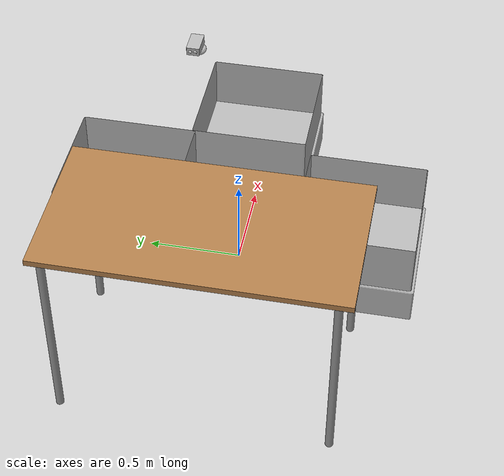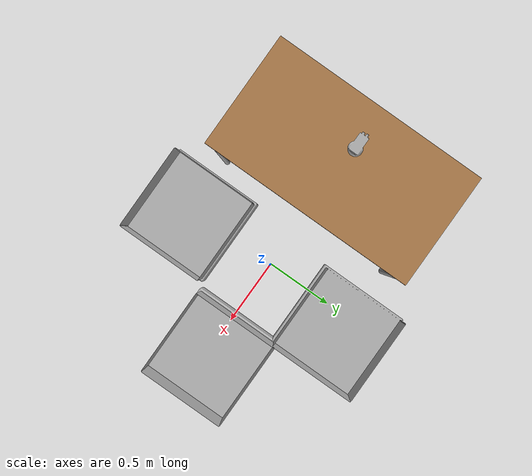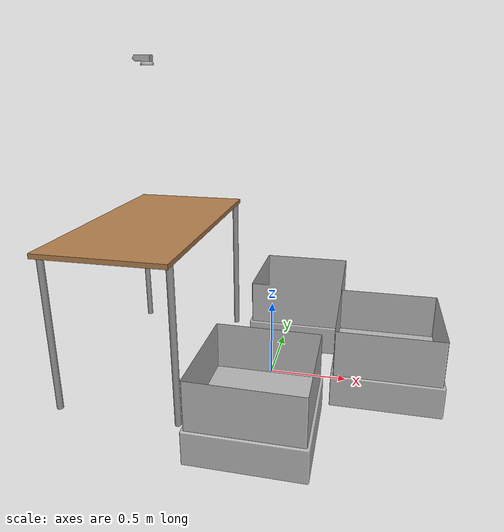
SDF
<?xml version='1.0' encoding='utf-8'?>
<sdf version="1.6">
  <world name="default">
    <!-- A gazebo links attacher -->
    <plugin name="ros_link_attacher_plugin" filename="libgazebo_ros_link_attacher.so"/>

    <gravity>0 0 -9.8</gravity>
    <physics default="0" name="default_physics" type="ode">
      <max_step_size>0.001</max_step_size>
      <real_time_factor>1</real_time_factor>
      <real_time_update_rate>1000</real_time_update_rate>
    </physics>

    <include>
      <uri>model://logical_camera2</uri>
      <pose>-0.8 0 2.0 0 1.5708 0</pose>
    </include>

    <model name="table">
      <include>
        <uri>model://table</uri>
        <pose>-0.8 0 0 0 0 1.5708</pose>
        <static>true</static>
      </include>
    </model>

    <model name="sorting_bin_red_">
      <include>
        <uri>model://sorting_bin_red_</uri>
        <pose>0.11 0.65 0.0 0 0 0</pose>
        <static>true</static>
      </include>
    </model>

    <model name="sorting_bin_blue_">
      <include>
        <uri>model://sorting_bin_blue_</uri>
        <pose>0.04 -0.65 0 0 0 0</pose>
        <static>true</static>
      </include>
    </model>

    <model name="sorting_bin_green_">
      <include>
        <uri>model://sorting_bin_green_</uri>
        <pose>0.75 0.03 0 0 0 -1.57</pose>
        <static>true</static>
      </include>
    </model>

    <light name="Warehouse_CeilingLight_003" type="point">
      <pose frame="">0 0 5 0 0 0</pose>
      <diffuse>0.5 0.5 0.5 1</diffuse>
      <specular>0.2 0.2 0.2 1</specular>
      <attenuation>
        <range>80</range>
        <constant>0.1</constant>
        <linear>0.01</linear>
        <quadratic>0.001</quadratic>
      </attenuation>
      <cast_shadows>1</cast_shadows>
      <direction>0 0 -1</direction>
    </light>

    <gui fullscreen='0'>
      <camera name='user_camera'>
        <pose frame=''>-2.75 4.19 5.15 0.0 0.72 -0.99</pose>
        <view_controller>orbit</view_controller>
        <projection_type>perspective</projection_type>
      </camera>
    </gui>

  </world>
</sdf>

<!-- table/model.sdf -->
<sdf version="1.5">
  <model name="table">
    <static>true</static>
    <link name="link">
      <collision name="surface">
        <pose>0 0 1.0 0 0 0</pose>
        <geometry>
          <box>
            <size>1.5 0.8 0.03</size>
          </box>
        </geometry>
        <surface>
          <friction>
            <ode>
              <mu>0.6</mu>
              <mu2>0.6</mu2>
            </ode>
          </friction>
        </surface>
      </collision>
      <visual name="visual1">
        <pose>0 0 1.0 0 0 0</pose>
        <geometry>
          <box>
            <size>1.5 0.8 0.03</size>
          </box>
        </geometry>
        <material>
          <script>
            <uri>model://media/materials/scripts/gazebo.material</uri>
            <name>Gazebo/Wood</name>
          </script>
        </material>
      </visual>
      <collision name="front_left_leg">
        <pose>0.68 0.38 0.5 0 0 0</pose>
        <geometry>
          <cylinder>
            <radius>0.02</radius>
            <length>1.0</length>
          </cylinder>
        </geometry>
      </collision>
      <visual name="front_left_leg">
        <pose>0.68 0.38 0.5 0 0 0</pose>
        <geometry>
          <cylinder>
            <radius>0.02</radius>
            <length>1.0</length>
          </cylinder>
        </geometry>
        <material>
          <script>
            <uri>model://media/materials/scripts/gazebo.material</uri>
            <name>Gazebo/Grey</name>
          </script>
        </material>
      </visual>
      <collision name="front_right_leg">
        <pose>0.68 -0.38 0.5 0 0 0</pose>
        <geometry>
          <cylinder>
            <radius>0.02</radius>
            <length>1.0</length>
          </cylinder>
        </geometry>
      </collision>
      <visual name="front_right_leg">
        <pose>0.68 -0.38 0.5 0 0 0</pose>
        <geometry>
          <cylinder>
            <radius>0.02</radius>
            <length>1.0</length>
          </cylinder>
        </geometry>
        <material>
          <script>
            <uri>model://media/materials/scripts/gazebo.material</uri>
            <name>Gazebo/Grey</name>
          </script>
        </material>
      </visual>
      <collision name="back_right_leg">
        <pose>-0.68 -0.38 0.5 0 0 0</pose>
        <geometry>
          <cylinder>
            <radius>0.02</radius>
            <length>1.0</length>
          </cylinder>
        </geometry>
      </collision>
      <visual name="back_right_leg">
        <pose>-0.68 -0.38 0.5 0 0 0</pose>
        <geometry>
          <cylinder>
            <radius>0.02</radius>
            <length>1.0</length>
          </cylinder>
        </geometry>
        <material>
          <script>
            <uri>model://media/materials/scripts/gazebo.material</uri>
            <name>Gazebo/Grey</name>
          </script>
        </material>
      </visual>
      <collision name="back_left_leg">
        <pose>-0.68 0.38 0.5 0 0 0</pose>
        <geometry>
          <cylinder>
            <radius>0.02</radius>
            <length>1.0</length>
          </cylinder>
        </geometry>
      </collision>
      <visual name="back_left_leg">
        <pose>-0.68 0.38 0.5 0 0 0</pose>
        <geometry>
          <cylinder>
            <radius>0.02</radius>
            <length>1.0</length>
          </cylinder>
        </geometry>
        <material>
          <script>
            <uri>model://media/materials/scripts/gazebo.material</uri>
            <name>Gazebo/Grey</name>
          </script>
        </material>
      </visual>
    </link>
  </model>
</sdf>

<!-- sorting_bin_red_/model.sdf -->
<sdf version='1.6'>
  <model name='sorting_bin_red_'>
    <link name='sorting_bin_red_base_link'>
      <pose frame=''>0 0 0 0 -0 0</pose>
      <inertial>
        <pose frame=''>0 0 0.009901 0 -0 0</pose>
        <mass>101</mass>
        <inertia>
          <ixx>2.9901</ixx>
          <ixy>0</ixy>
          <ixz>0</ixz>
          <iyy>2.9901</iyy>
          <iyz>0</iyz>
          <izz>2</izz>
        </inertia>
      </inertial>
      <gravity>1</gravity>
      <velocity_decay/>
      <sensor name='sorting_bin_red_contact_sensor' type='contact'>
        <update_rate>10</update_rate>
        <contact>
          <collision>sorting_bin_red_base_link_collision</collision>
          <topic>__default_topic__</topic>
        </contact>
        <pose frame=''>0 0 1 0 -0 0</pose>
      </sensor>
      <self_collide>0</self_collide>
      <enable_wind>0</enable_wind>
      <kinematic>0</kinematic>
      <visual name='sorting_bin_red_base_link_visual'>
        <pose frame=''>0 0 0 0 -0 0</pose>
        <geometry>
          <mesh>
            <scale>1 1 1</scale>
            <uri>model://sorting_bin_red_/meshes/visual/bin.dae</uri>
          </mesh>
        </geometry>
        <material>
          <shader type='pixel'/>
        </material>
        <transparency>0</transparency>
        <cast_shadows>1</cast_shadows>
      </visual>
      <collision name='sorting_bin_red_base_link_collision'>
        <laser_retro>0</laser_retro>
        <max_contacts>10</max_contacts>
        <pose frame=''>0 0 0 0 -0 0</pose>
        <geometry>
          <mesh>
            <uri>model://sorting_bin_red_/meshes/collision/bin_bottom.dae</uri>
            <scale>1 1 1</scale>
          </mesh>
        </geometry>
        <surface>
          <friction>
            <ode>
              <mu>1</mu>
              <mu2>1</mu2>
              <fdir1>0 0 0</fdir1>
              <slip1>0</slip1>
              <slip2>0</slip2>
            </ode>
            <torsional>
              <coefficient>1</coefficient>
              <patch_radius>0</patch_radius>
              <surface_radius>0</surface_radius>
              <use_patch_radius>1</use_patch_radius>
              <ode>
                <slip>0</slip>
              </ode>
            </torsional>
          </friction>
          <bounce>
            <restitution_coefficient>0</restitution_coefficient>
            <threshold>1e+06</threshold>
          </bounce>
          <contact>
            <collide_without_contact>0</collide_without_contact>
            <collide_without_contact_bitmask>1</collide_without_contact_bitmask>
            <collide_bitmask>1</collide_bitmask>
            <ode>
              <soft_cfm>0</soft_cfm>
              <soft_erp>0.2</soft_erp>
              <kp>1e+13</kp>
              <kd>1</kd>
              <max_vel>0.01</max_vel>
              <min_depth>0</min_depth>
            </ode>
            <bullet>
              <split_impulse>1</split_impulse>
              <split_impulse_penetration_threshold>-0.01</split_impulse_penetration_threshold>
              <soft_cfm>0</soft_cfm>
              <soft_erp>0.2</soft_erp>
              <kp>1e+13</kp>
              <kd>1</kd>
            </bullet>
          </contact>
        </surface>
      </collision>
      <collision name='sorting_bin_red_base_link_collision_1'>
        <laser_retro>0</laser_retro>
        <max_contacts>10</max_contacts>
        <pose frame=''>0 0 0 0 -0 0</pose>
        <geometry>
          <mesh>
            <uri>model://sorting_bin_red_/meshes/collision/bin_sides.dae</uri>
            <scale>1 1 1</scale>
          </mesh>
        </geometry>
        <surface>
          <friction>
            <ode>
              <mu>1</mu>
              <mu2>1</mu2>
              <fdir1>0 0 0</fdir1>
              <slip1>0</slip1>
              <slip2>0</slip2>
            </ode>
            <torsional>
              <coefficient>1</coefficient>
              <patch_radius>0</patch_radius>
              <surface_radius>0</surface_radius>
              <use_patch_radius>1</use_patch_radius>
              <ode>
                <slip>0</slip>
              </ode>
            </torsional>
          </friction>
          <bounce>
            <restitution_coefficient>0</restitution_coefficient>
            <threshold>1e+06</threshold>
          </bounce>
          <contact>
            <collide_without_contact>0</collide_without_contact>
            <collide_without_contact_bitmask>1</collide_without_contact_bitmask>
            <collide_bitmask>1</collide_bitmask>
            <ode>
              <soft_cfm>0</soft_cfm>
              <soft_erp>0.2</soft_erp>
              <kp>1e+13</kp>
              <kd>1</kd>
              <max_vel>0.01</max_vel>
              <min_depth>0</min_depth>
            </ode>
            <bullet>
              <split_impulse>1</split_impulse>
              <split_impulse_penetration_threshold>-0.01</split_impulse_penetration_threshold>
              <soft_cfm>0</soft_cfm>
              <soft_erp>0.2</soft_erp>
              <kp>1e+13</kp>
              <kd>1</kd>
            </bullet>
          </contact>
        </surface>
      </collision>
    </link>
    <static>1</static>
    <allow_auto_disable>1</allow_auto_disable>
  </model>
</sdf>

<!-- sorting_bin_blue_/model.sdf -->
<sdf version='1.6'>
  <model name='sorting_bin_blue_'>
    <link name='sorting_bin_blue_base_link'>
      <pose frame=''>0 0 0 0 -0 0</pose>
      <inertial>
        <pose frame=''>0 0 0.009901 0 -0 0</pose>
        <mass>101</mass>
        <inertia>
          <ixx>2.9901</ixx>
          <ixy>0</ixy>
          <ixz>0</ixz>
          <iyy>2.9901</iyy>
          <iyz>0</iyz>
          <izz>2</izz>
        </inertia>
      </inertial>
      <gravity>1</gravity>
      <velocity_decay/>
      <sensor name='sorting_bin_blue_contact_sensor' type='contact'>
        <update_rate>10</update_rate>
        <contact>
          <collision>sorting_bin_blue_base_link_collision</collision>
          <topic>__default_topic__</topic>
        </contact>
        <pose frame=''>0 0 1 0 -0 0</pose>
      </sensor>
      <self_collide>0</self_collide>
      <enable_wind>0</enable_wind>
      <kinematic>0</kinematic>
      <visual name='sorting_bin_blue_base_link_visual'>
        <pose frame=''>0 0 0 0 -0 0</pose>
        <geometry>
          <mesh>
            <scale>1 1 1</scale>
            <uri>model://sorting_bin_blue_/meshes/visual/bin.dae</uri>
          </mesh>
        </geometry>
        <material>
          <shader type='pixel'/>
        </material>
        <transparency>0</transparency>
        <cast_shadows>1</cast_shadows>
      </visual>
      <collision name='sorting_bin_blue_base_link_collision'>
        <laser_retro>0</laser_retro>
        <max_contacts>10</max_contacts>
        <pose frame=''>0 0 0 0 -0 0</pose>
        <geometry>
          <mesh>
            <uri>model://sorting_bin_blue_/meshes/collision/bin_bottom.dae</uri>
            <scale>1 1 1</scale>
          </mesh>
        </geometry>
        <surface>
          <friction>
            <ode>
              <mu>1</mu>
              <mu2>1</mu2>
              <fdir1>0 0 0</fdir1>
              <slip1>0</slip1>
              <slip2>0</slip2>
            </ode>
            <torsional>
              <coefficient>1</coefficient>
              <patch_radius>0</patch_radius>
              <surface_radius>0</surface_radius>
              <use_patch_radius>1</use_patch_radius>
              <ode>
                <slip>0</slip>
              </ode>
            </torsional>
          </friction>
          <bounce>
            <restitution_coefficient>0</restitution_coefficient>
            <threshold>1e+06</threshold>
          </bounce>
          <contact>
            <collide_without_contact>0</collide_without_contact>
            <collide_without_contact_bitmask>1</collide_without_contact_bitmask>
            <collide_bitmask>1</collide_bitmask>
            <ode>
              <soft_cfm>0</soft_cfm>
              <soft_erp>0.2</soft_erp>
              <kp>1e+13</kp>
              <kd>1</kd>
              <max_vel>0.01</max_vel>
              <min_depth>0</min_depth>
            </ode>
            <bullet>
              <split_impulse>1</split_impulse>
              <split_impulse_penetration_threshold>-0.01</split_impulse_penetration_threshold>
              <soft_cfm>0</soft_cfm>
              <soft_erp>0.2</soft_erp>
              <kp>1e+13</kp>
              <kd>1</kd>
            </bullet>
          </contact>
        </surface>
      </collision>
      <collision name='sorting_bin_blue_base_link_collision_1'>
        <laser_retro>0</laser_retro>
        <max_contacts>10</max_contacts>
        <pose frame=''>0 0 0 0 -0 0</pose>
        <geometry>
          <mesh>
            <uri>model://sorting_bin_blue_/meshes/collision/bin_sides.dae</uri>
            <scale>1 1 1</scale>
          </mesh>
        </geometry>
        <surface>
          <friction>
            <ode>
              <mu>1</mu>
              <mu2>1</mu2>
              <fdir1>0 0 0</fdir1>
              <slip1>0</slip1>
              <slip2>0</slip2>
            </ode>
            <torsional>
              <coefficient>1</coefficient>
              <patch_radius>0</patch_radius>
              <surface_radius>0</surface_radius>
              <use_patch_radius>1</use_patch_radius>
              <ode>
                <slip>0</slip>
              </ode>
            </torsional>
          </friction>
          <bounce>
            <restitution_coefficient>0</restitution_coefficient>
            <threshold>1e+06</threshold>
          </bounce>
          <contact>
            <collide_without_contact>0</collide_without_contact>
            <collide_without_contact_bitmask>1</collide_without_contact_bitmask>
            <collide_bitmask>1</collide_bitmask>
            <ode>
              <soft_cfm>0</soft_cfm>
              <soft_erp>0.2</soft_erp>
              <kp>1e+13</kp>
              <kd>1</kd>
              <max_vel>0.01</max_vel>
              <min_depth>0</min_depth>
            </ode>
            <bullet>
              <split_impulse>1</split_impulse>
              <split_impulse_penetration_threshold>-0.01</split_impulse_penetration_threshold>
              <soft_cfm>0</soft_cfm>
              <soft_erp>0.2</soft_erp>
              <kp>1e+13</kp>
              <kd>1</kd>
            </bullet>
          </contact>
        </surface>
      </collision>
    </link>
    <static>1</static>
    <allow_auto_disable>1</allow_auto_disable>
  </model>
</sdf>

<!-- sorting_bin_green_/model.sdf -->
<sdf version='1.6'>
  <model name='sorting_bin_green_'>
    <link name='sorting_bin_green_base_link'>
      <pose frame=''>0 0 0 0 -0 0</pose>
      <inertial>
        <pose frame=''>0 0 0.009901 0 -0 0</pose>
        <mass>101</mass>
        <inertia>
          <ixx>2.9901</ixx>
          <ixy>0</ixy>
          <ixz>0</ixz>
          <iyy>2.9901</iyy>
          <iyz>0</iyz>
          <izz>2</izz>
        </inertia>
      </inertial>
      <gravity>1</gravity>
      <velocity_decay/>
      <sensor name='sorting_bin_green_contact_sensor' type='contact'>
        <update_rate>10</update_rate>
        <contact>
          <collision>sorting_bin_green_base_link_collision</collision>
          <topic>__default_topic__</topic>
        </contact>
        <pose frame=''>0 0 1 0 -0 0</pose>
      </sensor>
      <self_collide>0</self_collide>
      <enable_wind>0</enable_wind>
      <kinematic>0</kinematic>
      <visual name='sorting_bin_green_base_link_visual'>
        <pose frame=''>0 0 0 0 -0 0</pose>
        <geometry>
          <mesh>
            <scale>1 1 1</scale>
            <uri>model://sorting_bin_green_/meshes/visual/bin.dae</uri>
          </mesh>
        </geometry>
        <material>
          <shader type='pixel'/>
        </material>
        <transparency>0</transparency>
        <cast_shadows>1</cast_shadows>
      </visual>
      <collision name='sorting_bin_green_base_link_collision'>
        <laser_retro>0</laser_retro>
        <max_contacts>10</max_contacts>
        <pose frame=''>0 0 0 0 -0 0</pose>
        <geometry>
          <mesh>
            <uri>model://sorting_bin_green_/meshes/collision/bin_bottom.dae</uri>
            <scale>1 1 1</scale>
          </mesh>
        </geometry>
        <surface>
          <friction>
            <ode>
              <mu>1</mu>
              <mu2>1</mu2>
              <fdir1>0 0 0</fdir1>
              <slip1>0</slip1>
              <slip2>0</slip2>
            </ode>
            <torsional>
              <coefficient>1</coefficient>
              <patch_radius>0</patch_radius>
              <surface_radius>0</surface_radius>
              <use_patch_radius>1</use_patch_radius>
              <ode>
                <slip>0</slip>
              </ode>
            </torsional>
          </friction>
          <bounce>
            <restitution_coefficient>0</restitution_coefficient>
            <threshold>1e+06</threshold>
          </bounce>
          <contact>
            <collide_without_contact>0</collide_without_contact>
            <collide_without_contact_bitmask>1</collide_without_contact_bitmask>
            <collide_bitmask>1</collide_bitmask>
            <ode>
              <soft_cfm>0</soft_cfm>
              <soft_erp>0.2</soft_erp>
              <kp>1e+13</kp>
              <kd>1</kd>
              <max_vel>0.01</max_vel>
              <min_depth>0</min_depth>
            </ode>
            <bullet>
              <split_impulse>1</split_impulse>
              <split_impulse_penetration_threshold>-0.01</split_impulse_penetration_threshold>
              <soft_cfm>0</soft_cfm>
              <soft_erp>0.2</soft_erp>
              <kp>1e+13</kp>
              <kd>1</kd>
            </bullet>
          </contact>
        </surface>
      </collision>
      <collision name='sorting_bin_green_base_link_collision_1'>
        <laser_retro>0</laser_retro>
        <max_contacts>10</max_contacts>
        <pose frame=''>0 0 0 0 -0 0</pose>
        <geometry>
          <mesh>
            <uri>model://sorting_bin_green_/meshes/collision/bin_sides.dae</uri>
            <scale>1 1 1</scale>
          </mesh>
        </geometry>
        <surface>
          <friction>
            <ode>
              <mu>1</mu>
              <mu2>1</mu2>
              <fdir1>0 0 0</fdir1>
              <slip1>0</slip1>
              <slip2>0</slip2>
            </ode>
            <torsional>
              <coefficient>1</coefficient>
              <patch_radius>0</patch_radius>
              <surface_radius>0</surface_radius>
              <use_patch_radius>1</use_patch_radius>
              <ode>
                <slip>0</slip>
              </ode>
            </torsional>
          </friction>
          <bounce>
            <restitution_coefficient>0</restitution_coefficient>
            <threshold>1e+06</threshold>
          </bounce>
          <contact>
            <collide_without_contact>0</collide_without_contact>
            <collide_without_contact_bitmask>1</collide_without_contact_bitmask>
            <collide_bitmask>1</collide_bitmask>
            <ode>
              <soft_cfm>0</soft_cfm>
              <soft_erp>0.2</soft_erp>
              <kp>1e+13</kp>
              <kd>1</kd>
              <max_vel>0.01</max_vel>
              <min_depth>0</min_depth>
            </ode>
            <bullet>
              <split_impulse>1</split_impulse>
              <split_impulse_penetration_threshold>-0.01</split_impulse_penetration_threshold>
              <soft_cfm>0</soft_cfm>
              <soft_erp>0.2</soft_erp>
              <kp>1e+13</kp>
              <kd>1</kd>
            </bullet>
          </contact>
        </surface>
      </collision>
    </link>
    <static>1</static>
    <allow_auto_disable>1</allow_auto_disable>
  </model>
</sdf>

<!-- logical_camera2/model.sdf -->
<sdf version="1.6">
  <model name="logical_camera_2">
    <plugin name="ros_logical_camera_2" filename="libROSLogicalCameraPlugin.so">
      <robotNamespace>/mte_roblab</robotNamespace>
    </plugin>
    <link name="logical_camera_2_link">
      <gravity>false</gravity>
      <inertial>
        <mass>0.1</mass>
        <inertia>
          <ixx>0.000166667</ixx>
          <iyy>0.000166667</iyy>
          <izz>0.000166667</izz>
        </inertia>
      </inertial>

      <collision name="collision">
        <pose>0 0.02 0 0 0 -1.5708</pose>
        <geometry>
          <mesh>
            <uri>model://logical_camera2/meshes/camera.dae</uri>
          </mesh>
        </geometry>
      </collision>

      <visual name="visual">
        <pose>0 0.02 0 0 0 -1.5708</pose>
        <geometry>
          <mesh>
            <uri>model://logical_camera2/meshes/camera.dae</uri>
          </mesh>
        </geometry>
      </visual>

      <sensor name="logical_camera_2" type="logical_camera">

        <logical_camera>
          <near>0.9</near>
          <horizontal_fov>1.1</horizontal_fov>
          <aspect_ratio>2.0</aspect_ratio>
        </logical_camera>

        <visualize>true</visualize>
        <always_on>true</always_on>
        <update_rate>10</update_rate>
        <topic>logical_camera_2</topic>
      </sensor>
    </link>
  </model>
</sdf>
